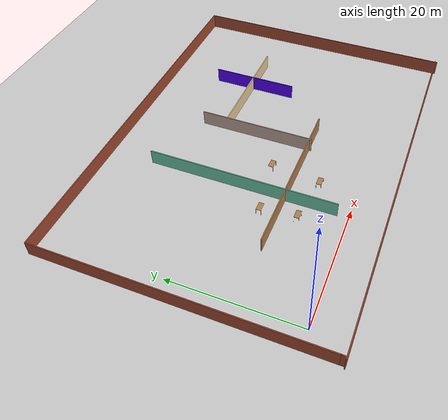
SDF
<sdf version="1.6">
 <world name="default">
  <model name="ground_plane">
   <static>1</static>
   <link name="link">
    <collision name="collision">
     <geometry><plane><normal>0 0 1</normal><size>100 100</size></plane></geometry>
     <surface><friction><ode><mu>100</mu><mu2>50</mu2></ode></friction></surface>
    </collision>
    <visual name="visual">
     <cast_shadows>0</cast_shadows>
     <geometry><plane><normal>0 0 1</normal><size>100 100</size></plane></geometry>
     <material>
      <script><uri>file://media/materials/scripts/gazebo.material</uri><name>Gazebo/Grey</name></script>
     </material>
    </visual>
   </link>
  </model>
  <model name="Project">
   <pose>27.3366 16.539 0 0 -0 0</pose>
   <link name="Wall_10">
    <collision name="Wall_10_Collision">
     <geometry><box><size>30 0.15 2.5</size></box></geometry>
     <pose>0 0 1.25 0 -0 0</pose>
    </collision>
    <visual name="Wall_10_Visual">
     <pose>0 0 1.25 0 -0 0</pose>
     <geometry><box><size>30 0.15 2.5</size></box></geometry>
     <material>
      <script><uri>file://media/materials/scripts/gazebo.material</uri><name>Gazebo/Grey</name></script>
      <ambient>0.435294 0.796078 0.67451 1</ambient>
     </material>
    </visual>
    <pose>-8.8162 0.17286 0 0 -0 1.5708</pose>
   </link>
   <link name="Wall_15">
    <collision name="Wall_15_Collision">
     <geometry><box><size>18.75 0.15 2.5</size></box></geometry>
     <pose>0 0 1.25 0 -0 0</pose>
    </collision>
    <visual name="Wall_15_Visual">
     <pose>0 0 1.25 0 -0 0</pose>
     <geometry><box><size>18.75 0.15 2.5</size></box></geometry>
     <material>
      <script><uri>file://media/materials/scripts/gazebo.material</uri><name>Gazebo/Grey</name></script>
      <ambient>0.760784 0.662745 0.627451 1</ambient>
     </material>
    </visual>
    <pose>2.55486 2.15282 0 0 0 -1.5708</pose>
   </link>
   <link name="Wall_19">
    <collision name="Wall_19_Collision">
     <geometry><box><size>18.5 0.15 2.5</size></box></geometry>
     <pose>0 0 1.25 0 -0 0</pose>
    </collision>
    <visual name="Wall_19_Visual">
     <pose>0 0 1.25 0 -0 0</pose>
     <geometry><box><size>18.5 0.15 2.5</size></box></geometry>
     <material>
      <script><uri>file://media/materials/scripts/gazebo.material</uri><name>Gazebo/Grey</name></script>
      <ambient>0.921569 0.807843 0.615686 1</ambient>
     </material>
    </visual>
    <pose>11.8234 7.2798 0 0 -0 0</pose>
   </link>
   <link name="Wall_21">
    <collision name="Wall_21_Collision">
     <geometry><box><size>14 0.15 2.5</size></box></geometry>
     <pose>0 0 1.25 0 -0 0</pose>
    </collision>
    <visual name="Wall_21_Visual">
     <pose>0 0 1.25 0 -0 0</pose>
     <geometry><box><size>14 0.15 2.5</size></box></geometry>
     <material>
      <script><uri>file://media/materials/scripts/gazebo.material</uri><name>Gazebo/Grey</name></script>
      <ambient>0.333333 0 1 1</ambient>
     </material>
    </visual>
    <pose>14.105 7.06508 0 0 0 -1.5708</pose>
   </link>
   <link name="Wall_23">
    <collision name="Wall_23_Collision">
     <geometry><box><size>43.75 0.15 2.5</size></box></geometry>
     <pose>0 0 1.25 0 -0 0</pose>
    </collision>
    <visual name="Wall_23_Visual">
     <pose>0 0 1.25 0 -0 0</pose>
     <geometry><box><size>43.75 0.15 2.5</size></box></geometry>
     <material>
      <script><uri>file://media/materials/scripts/gazebo.material</uri><name>Gazebo/Bricks</name></script>
      <ambient>1 1 1 1</ambient>
     </material>
    </visual>
    <pose>-30.2613 0.499999 0 0 -0 1.5708</pose>
   </link>
   <link name="Wall_24">
    <collision name="Wall_24_Collision">
     <geometry><box><size>60.75 0.15 2.5</size></box></geometry>
     <pose>0 0 1.25 0 -0 0</pose>
    </collision>
    <visual name="Wall_24_Visual">
     <pose>0 0 1.25 0 -0 0</pose>
     <geometry><box><size>60.75 0.15 2.5</size></box></geometry>
     <material>
      <script><uri>file://media/materials/scripts/gazebo.material</uri><name>Gazebo/Bricks</name></script>
      <ambient>1 1 1 1</ambient>
     </material>
    </visual>
    <pose>0.038712 22.3 0 0 -0 0</pose>
   </link>
   <link name="Wall_25">
    <collision name="Wall_25_Collision">
     <geometry><box><size>44.75 0.15 2.5</size></box></geometry>
     <pose>0 0 1.25 0 -0 0</pose>
    </collision>
    <visual name="Wall_25_Visual">
     <pose>0 0 1.25 0 -0 0</pose>
     <geometry><box><size>44.75 0.15 2.5</size></box></geometry>
     <material>
      <script><uri>file://media/materials/scripts/gazebo.material</uri><name>Gazebo/Bricks</name></script>
      <ambient>1 1 1 1</ambient>
     </material>
    </visual>
    <pose>30.3387 -1e-06 0 0 0 -1.5708</pose>
   </link>
   <link name="Wall_27">
    <collision name="Wall_27_Collision">
     <geometry><box><size>0.75 0.15 2.5</size></box></geometry>
     <pose>0 0 1.25 0 -0 0</pose>
    </collision>
    <visual name="Wall_27_Visual">
     <pose>0 0 1.25 0 -0 0</pose>
     <geometry><box><size>0.75 0.15 2.5</size></box></geometry>
     <material>
      <script><uri>file://media/materials/scripts/gazebo.material</uri><name>Gazebo/Bricks</name></script>
      <ambient>1 1 1 1</ambient>
     </material>
    </visual>
    <pose>-30.2613 -21.6 0 0 0 -1.5708</pose>
   </link>
   <link name="Wall_5">
    <collision name="Wall_5_Collision">
     <geometry><box><size>61.2307 0.15 2.5</size></box></geometry>
     <pose>0 0 1.25 0 -0 0</pose>
    </collision>
    <visual name="Wall_5_Visual">
     <pose>0 0 1.25 0 -0 0</pose>
     <geometry><box><size>61.2307 0.15 2.5</size></box></geometry>
     <material>
      <script><uri>file://media/materials/scripts/gazebo.material</uri><name>Gazebo/Bricks</name></script>
      <ambient>1 1 1 1</ambient>
     </material>
    </visual>
    <pose>0 -21.9666 0 0 -0 3.14016</pose>
   </link>
   <link name="Wall_8">
    <collision name="Wall_8_Collision">
     <geometry><box><size>26.25 0.15 2.5</size></box></geometry>
     <pose>0 0 1.25 0 -0 0</pose>
    </collision>
    <visual name="Wall_8_Visual">
     <pose>0 0 1.25 0 -0 0</pose>
     <geometry><box><size>26.25 0.15 2.5</size></box></geometry>
     <material>
      <script><uri>file://media/materials/scripts/gazebo.material</uri><name>Gazebo/Wood</name></script>
      <ambient>0.996078 0.47451 0.0196078 1</ambient>
     </material>
    </visual>
    <pose>-5.40173 -6.8408 0 0 -0 0</pose>
   </link>
   <static>1</static>
  </model>
  <model name="table">
   <static>0</static>
   <link name="link">
    <collision name="surface">
     <pose>0 0 1 0 -0 0</pose>
     <geometry><box><size>1.5 0.8 0.03</size></box></geometry>
     <surface><friction><ode><mu>0.6</mu><mu2>0.6</mu2></ode></friction></surface>
    </collision>
    <visual name="visual1">
     <pose>0 0 1 0 -0 0</pose>
     <geometry><box><size>1.4 0.8 0.04</size></box></geometry>
     <material>
      <script><uri>file://media/materials/scripts/gazebo.material</uri><name>Gazebo/Wood</name></script>
     </material>
    </visual>
    <collision name="front_left_leg">
     <pose>0.68 0.38 0.5 0 -0 0</pose>
     <geometry><cylinder><radius>0.02</radius><length>1</length></cylinder></geometry>
    </collision>
    <visual name="front_left_leg">
     <pose>0.68 0.38 0.5 0 -0 0</pose>
     <geometry><cylinder><radius>0.02</radius><length>1</length></cylinder></geometry>
     <material>
      <script><uri>file://media/materials/scripts/gazebo.material</uri><name>Gazebo/Grey</name></script>
     </material>
    </visual>
    <collision name="front_right_leg">
     <pose>0.68 -0.38 0.5 0 -0 0</pose>
     <geometry><cylinder><radius>0.02</radius><length>1</length></cylinder></geometry>
    </collision>
    <visual name="front_right_leg">
     <pose>0.68 -0.38 0.5 0 -0 0</pose>
     <geometry><cylinder><radius>0.02</radius><length>1</length></cylinder></geometry>
     <material>
      <script><uri>file://media/materials/scripts/gazebo.material</uri><name>Gazebo/Grey</name></script>
     </material>
    </visual>
    <collision name="back_right_leg">
     <pose>-0.68 -0.38 0.5 0 -0 0</pose>
     <geometry><cylinder><radius>0.02</radius><length>1</length></cylinder></geometry>
    </collision>
    <visual name="back_right_leg">
     <pose>-0.68 -0.38 0.5 0 -0 0</pose>
     <geometry><cylinder><radius>0.02</radius><length>1</length></cylinder></geometry>
     <material>
      <script><uri>file://media/materials/scripts/gazebo.material</uri><name>Gazebo/Grey</name></script>
     </material>
    </visual>
    <collision name="back_left_leg">
     <pose>-0.68 0.38 0.5 0 -0 0</pose>
     <geometry><cylinder><radius>0.02</radius><length>1</length></cylinder></geometry>
    </collision>
    <visual name="back_left_leg">
     <pose>-0.68 0.38 0.5 0 -0 0</pose>
     <geometry><cylinder><radius>0.02</radius><length>1</length></cylinder></geometry>
     <material>
      <script><uri>file://media/materials/scripts/gazebo.material</uri><name>Gazebo/Grey</name></script>
     </material>
    </visual>
    <inertial>
     <inertia><ixx>1</ixx><ixy>0</ixy><ixz>0</ixz><iyy>1</iyy><iyz>0</iyz><izz>1</izz></inertia>
     <mass>1</mass>
    </inertial>
   </link>
   <pose>15.9227 6.84819 0 0 -0 0.01873</pose>
  </model>
  <model name="table_clone">
   <static>0</static>
   <link name="link">
    <collision name="surface">
     <pose>0 0 1 0 -0 0</pose>
     <geometry><box><size>1.5 0.8 0.03</size></box></geometry>
     <surface><friction><ode><mu>0.6</mu><mu2>0.6</mu2></ode></friction></surface>
    </collision>
    <visual name="visual1">
     <pose>0 0 1 0 -0 0</pose>
     <geometry><box><size>1.4 0.8 0.04</size></box></geometry>
     <material>
      <script><uri>file://media/materials/scripts/gazebo.material</uri><name>Gazebo/Wood</name></script>
     </material>
    </visual>
    <collision name="front_left_leg">
     <pose>0.68 0.38 0.5 0 -0 0</pose>
     <geometry><cylinder><radius>0.02</radius><length>1</length></cylinder></geometry>
    </collision>
    <visual name="front_left_leg">
     <pose>0.68 0.38 0.5 0 -0 0</pose>
     <geometry><cylinder><radius>0.02</radius><length>1</length></cylinder></geometry>
     <material>
      <script><uri>file://media/materials/scripts/gazebo.material</uri><name>Gazebo/Grey</name></script>
     </material>
    </visual>
    <collision name="front_right_leg">
     <pose>0.68 -0.38 0.5 0 -0 0</pose>
     <geometry><cylinder><radius>0.02</radius><length>1</length></cylinder></geometry>
    </collision>
    <visual name="front_right_leg">
     <pose>0.68 -0.38 0.5 0 -0 0</pose>
     <geometry><cylinder><radius>0.02</radius><length>1</length></cylinder></geometry>
     <material>
      <script><uri>file://media/materials/scripts/gazebo.material</uri><name>Gazebo/Grey</name></script>
     </material>
    </visual>
    <collision name="back_right_leg">
     <pose>-0.68 -0.38 0.5 0 -0 0</pose>
     <geometry><cylinder><radius>0.02</radius><length>1</length></cylinder></geometry>
    </collision>
    <visual name="back_right_leg">
     <pose>-0.68 -0.38 0.5 0 -0 0</pose>
     <geometry><cylinder><radius>0.02</radius><length>1</length></cylinder></geometry>
     <material>
      <script><uri>file://media/materials/scripts/gazebo.material</uri><name>Gazebo/Grey</name></script>
     </material>
    </visual>
    <collision name="back_left_leg">
     <pose>-0.68 0.38 0.5 0 -0 0</pose>
     <geometry><cylinder><radius>0.02</radius><length>1</length></cylinder></geometry>
    </collision>
    <visual name="back_left_leg">
     <pose>-0.68 0.38 0.5 0 -0 0</pose>
     <geometry><cylinder><radius>0.02</radius><length>1</length></cylinder></geometry>
     <material>
      <script><uri>file://media/materials/scripts/gazebo.material</uri><name>Gazebo/Grey</name></script>
     </material>
    </visual>
    <inertial>
     <inertia><ixx>1</ixx><ixy>0</ixy><ixz>0</ixz><iyy>1</iyy><iyz>0</iyz><izz>1</izz></inertia>
     <mass>1</mass>
    </inertial>
   </link>
   <pose>15.332 12.382 -9e-06 0 -1e-06 0</pose>
  </model>
  <model name="table_clone_clone">
   <static>0</static>
   <link name="link">
    <collision name="surface">
     <pose>0 0 1 0 -0 0</pose>
     <geometry><box><size>1.5 0.8 0.03</size></box></geometry>
     <surface><friction><ode><mu>0.6</mu><mu2>0.6</mu2></ode></friction></surface>
    </collision>
    <visual name="visual1">
     <pose>0 0 1 0 -0 0</pose>
     <geometry><box><size>1.4 0.8 0.04</size></box></geometry>
     <material>
      <script><uri>file://media/materials/scripts/gazebo.material</uri><name>Gazebo/Wood</name></script>
     </material>
    </visual>
    <collision name="front_left_leg">
     <pose>0.68 0.38 0.5 0 -0 0</pose>
     <geometry><cylinder><radius>0.02</radius><length>1</length></cylinder></geometry>
    </collision>
    <visual name="front_left_leg">
     <pose>0.68 0.38 0.5 0 -0 0</pose>
     <geometry><cylinder><radius>0.02</radius><length>1</length></cylinder></geometry>
     <material>
      <script><uri>file://media/materials/scripts/gazebo.material</uri><name>Gazebo/Grey</name></script>
     </material>
    </visual>
    <collision name="front_right_leg">
     <pose>0.68 -0.38 0.5 0 -0 0</pose>
     <geometry><cylinder><radius>0.02</radius><length>1</length></cylinder></geometry>
    </collision>
    <visual name="front_right_leg">
     <pose>0.68 -0.38 0.5 0 -0 0</pose>
     <geometry><cylinder><radius>0.02</radius><length>1</length></cylinder></geometry>
     <material>
      <script><uri>file://media/materials/scripts/gazebo.material</uri><name>Gazebo/Grey</name></script>
     </material>
    </visual>
    <collision name="back_right_leg">
     <pose>-0.68 -0.38 0.5 0 -0 0</pose>
     <geometry><cylinder><radius>0.02</radius><length>1</length></cylinder></geometry>
    </collision>
    <visual name="back_right_leg">
     <pose>-0.68 -0.38 0.5 0 -0 0</pose>
     <geometry><cylinder><radius>0.02</radius><length>1</length></cylinder></geometry>
     <material>
      <script><uri>file://media/materials/scripts/gazebo.material</uri><name>Gazebo/Grey</name></script>
     </material>
    </visual>
    <collision name="back_left_leg">
     <pose>-0.68 0.38 0.5 0 -0 0</pose>
     <geometry><cylinder><radius>0.02</radius><length>1</length></cylinder></geometry>
    </collision>
    <visual name="back_left_leg">
     <pose>-0.68 0.38 0.5 0 -0 0</pose>
     <geometry><cylinder><radius>0.02</radius><length>1</length></cylinder></geometry>
     <material>
      <script><uri>file://media/materials/scripts/gazebo.material</uri><name>Gazebo/Grey</name></script>
     </material>
    </visual>
    <inertial>
     <inertia><ixx>1</ixx><ixy>0</ixy><ixz>0</ixz><iyy>1</iyy><iyz>0</iyz><izz>1</izz></inertia>
     <mass>1</mass>
    </inertial>
   </link>
   <pose>24.0412 13.7804 -3e-06 -2e-06 3e-06 0</pose>
  </model>
  <model name="table_clone_0">
   <static>0</static>
   <link name="link">
    <collision name="surface">
     <pose>0 0 1 0 -0 0</pose>
     <geometry><box><size>1.5 0.8 0.03</size></box></geometry>
     <surface><friction><ode><mu>0.6</mu><mu2>0.6</mu2></ode></friction></surface>
    </collision>
    <visual name="visual1">
     <pose>0 0 1 0 -0 0</pose>
     <geometry><box><size>1.4 0.8 0.04</size></box></geometry>
     <material>
      <script><uri>file://media/materials/scripts/gazebo.material</uri><name>Gazebo/Wood</name></script>
     </material>
    </visual>
    <collision name="front_left_leg">
     <pose>0.68 0.38 0.5 0 -0 0</pose>
     <geometry><cylinder><radius>0.02</radius><length>1</length></cylinder></geometry>
    </collision>
    <visual name="front_left_leg">
     <pose>0.68 0.38 0.5 0 -0 0</pose>
     <geometry><cylinder><radius>0.02</radius><length>1</length></cylinder></geometry>
     <material>
      <script><uri>file://media/materials/scripts/gazebo.material</uri><name>Gazebo/Grey</name></script>
     </material>
    </visual>
    <collision name="front_right_leg">
     <pose>0.68 -0.38 0.5 0 -0 0</pose>
     <geometry><cylinder><radius>0.02</radius><length>1</length></cylinder></geometry>
    </collision>
    <visual name="front_right_leg">
     <pose>0.68 -0.38 0.5 0 -0 0</pose>
     <geometry><cylinder><radius>0.02</radius><length>1</length></cylinder></geometry>
     <material>
      <script><uri>file://media/materials/scripts/gazebo.material</uri><name>Gazebo/Grey</name></script>
     </material>
    </visual>
    <collision name="back_right_leg">
     <pose>-0.68 -0.38 0.5 0 -0 0</pose>
     <geometry><cylinder><radius>0.02</radius><length>1</length></cylinder></geometry>
    </collision>
    <visual name="back_right_leg">
     <pose>-0.68 -0.38 0.5 0 -0 0</pose>
     <geometry><cylinder><radius>0.02</radius><length>1</length></cylinder></geometry>
     <material>
      <script><uri>file://media/materials/scripts/gazebo.material</uri><name>Gazebo/Grey</name></script>
     </material>
    </visual>
    <collision name="back_left_leg">
     <pose>-0.68 0.38 0.5 0 -0 0</pose>
     <geometry><cylinder><radius>0.02</radius><length>1</length></cylinder></geometry>
    </collision>
    <visual name="back_left_leg">
     <pose>-0.68 0.38 0.5 0 -0 0</pose>
     <geometry><cylinder><radius>0.02</radius><length>1</length></cylinder></geometry>
     <material>
      <script><uri>file://media/materials/scripts/gazebo.material</uri><name>Gazebo/Grey</name></script>
     </material>
    </visual>
    <inertial>
     <inertia><ixx>1</ixx><ixy>0</ixy><ixz>0</ixz><iyy>1</iyy><iyz>0</iyz><izz>1</izz></inertia>
     <mass>1</mass>
    </inertial>
   </link>
   <pose>23.1524 5.79896 -2e-06 0 -0 0.01873</pose>
  </model>
 </world>
</sdf>
